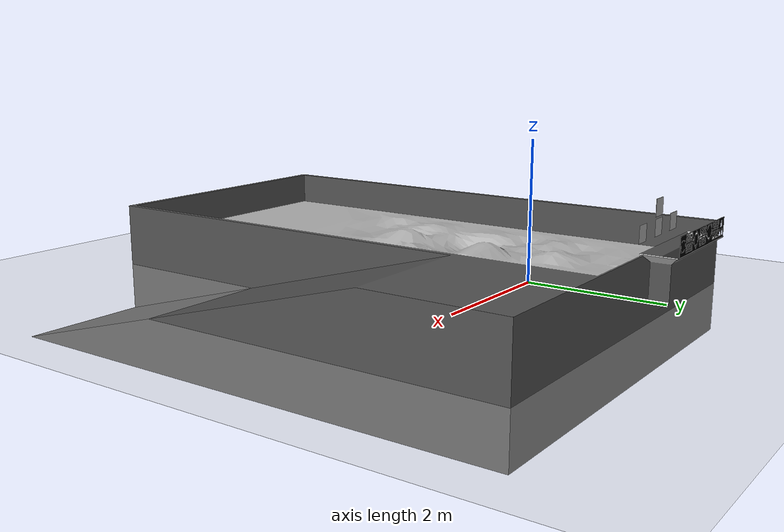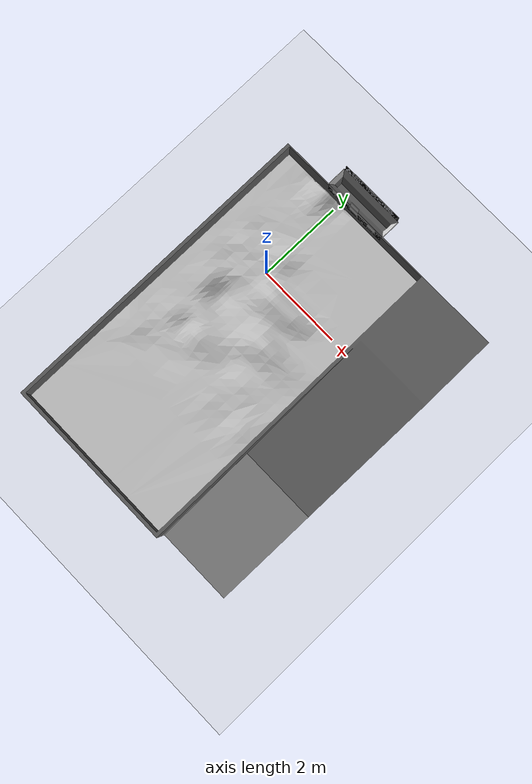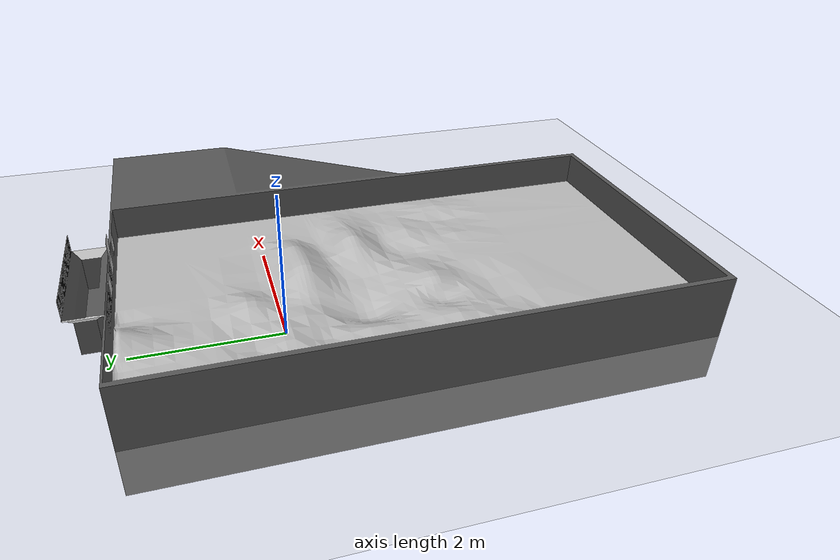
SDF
<sdf version="1.4">
 <world name="RMC_World">
  <include><uri>model://ground_plane</uri></include>
  <include><uri>model://sun</uri></include>
  <include><uri>model://LunArena2</uri><name>LunArena2</name><pose>2 -3 -1 0 0 0</pose></include>
  <include><uri>model://aruco</uri><name>Aruco Markers</name><pose>0.48 2 0.1 0 0 0</pose></include>
 </world>
</sdf>

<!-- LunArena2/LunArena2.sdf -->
<sdf version='1.4'>
  <model name='LunArena2'>
    <link name='arena_base_link'>
      <collision name='arena_base_link_collision'>
        <pose>0 0 0 0 -0 0</pose>
        <geometry>
          <mesh>
            <scale>1 1 1</scale>
            <uri>model://LunArena2/meshes/whole_base.dae</uri>
          </mesh>
        </geometry>
      </collision>
      <visual name='arena_base_link_visual'>
        <pose>0 0 0 0 -0 0</pose>
        <geometry>
          <mesh>
            <scale>1 1 1</scale>
            <uri>model://LunArena2/meshes/whole_base.dae</uri>
          </mesh>
        </geometry>
      </visual>
    </link>

  </model>
</sdf>

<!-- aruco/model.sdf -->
<sdf version="1.4">
  <model name="Aruco Markers">
    <static>true</static>
    <link name="marker781">
      <pose>0 0 1 0 0 -1.57</pose>
      <visual name="marker781_visual">
        <geometry>
	  <mesh>
	    <scale>4.9 4.9 4.9</scale>
	    <uri>model://aruco/meshes/artag_01.dae</uri>
	  </mesh>
        </geometry>
      </visual>
    </link>

    <link name="marker904">
      <pose>0.5 0 1 0 0 -1.57</pose>
      <visual name="marker904_visual">
        <geometry>
          <mesh>
            <scale>4.9 4.9 4.9</scale>
            <uri>model://aruco/meshes/artag_02.dae</uri>
          </mesh>
        </geometry>
      </visual>
    </link>

    <link name="marker644">
      <pose>-0.5 0 1 0 0 -1.57</pose>
      <visual name="marker644_visual">
        <geometry>
          <mesh>
            <scale>4.9 4.9 4.9</scale>
            <uri>model://aruco/meshes/artag_03.dae</uri>
          </mesh>
        </geometry>
      </visual>
    </link>

    <link name="marker341">
      <pose>0 0 1.25 0 0 -1.57</pose>
      <visual name="marker341_visual">
        <geometry>
          <mesh>
            <scale>4.9 4.9 4.9</scale>
            <uri>model://aruco/meshes/artag_04.dae</uri>
          </mesh>
        </geometry>
      </visual>
    </link>

    <link name="box_link">
      <visual name="box_link_visual">
        <geometry>
	  <box>
	    <size>0.22 0.22 0.001</size>
	  </box>
        </geometry>
      </visual>

    </link>

  </model>
</sdf>
